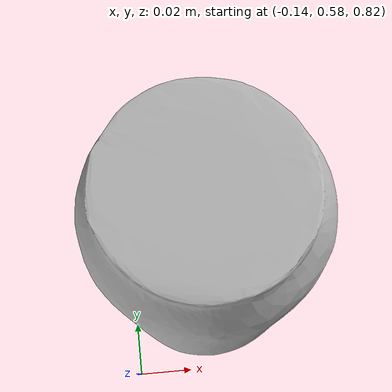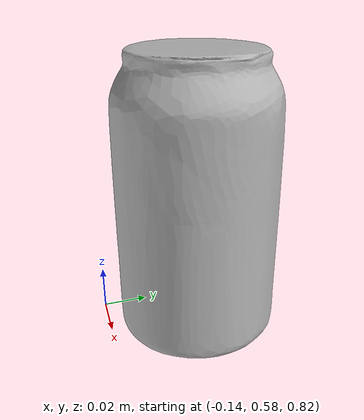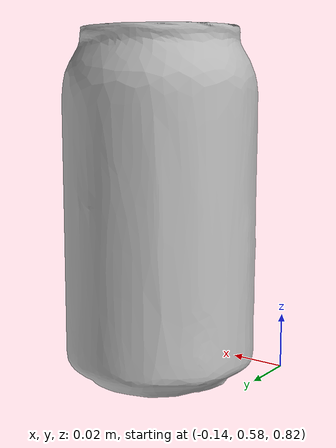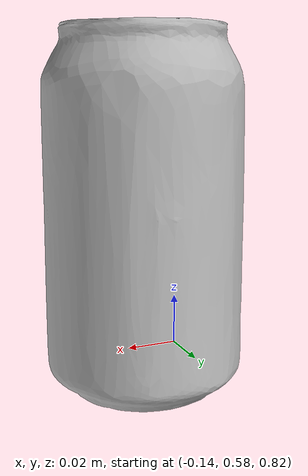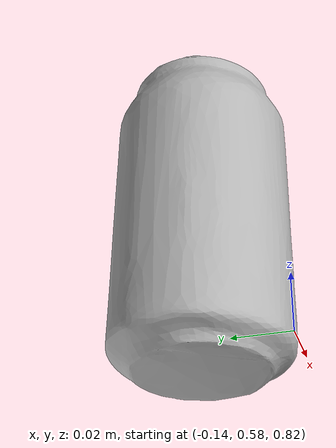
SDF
<?xml version='1.0'?>
<sdf version='1.7'>
  <model name='coke_can'>
    <pose>-0.106393 0.623094 0.818717 0 0 0</pose>
    <static>true</static>

    <link name='link'>
      <inertial>
        <pose>0 0 0.06 0 0 0</pose>
        <mass>0.10</mass>
        <inertia>
          <ixx>0.00055575</ixx>
          <ixy>0</ixy>
          <ixz>0</ixz>
          <iyy>0.00055575</iyy>
          <iyz>0</iyz>
          <izz>0.0001755</izz>
        </inertia>
      </inertial>

      <collision name='collision'>
        <pose>0 0 -0.18 0 0 0</pose>
        <geometry>
          <mesh>
            <uri>model://coke_can/meshes/coke_can.dae</uri>
          </mesh>
        </geometry>
        <surface>
          <friction>
            <ode>
              <mu>20</mu>
              <mu2>20</mu2>
            </ode>
          </friction>
          <contact>
              <kp>1e+07</kp>
              <kd>1</kd>
              <min_depth>0.001</min_depth>
              <max_vel>0.1</max_vel>
          </contact>
        </surface>
        <max_contacts>10</max_contacts>
      </collision>

      <visual name='visual'>
        <pose>0 0 -0.18 0 0 0</pose>
        <geometry>
          <mesh>
            <uri>model://coke_can/meshes/coke_can.dae</uri>
          </mesh>
        </geometry>
        <material>
          <transparency>0</transparency>
        </material>
      </visual>
      <self_collide>false</self_collide>
      <enable_wind>false</enable_wind>
      <kinematic>false</kinematic>
    </link>
  </model>
</sdf>
